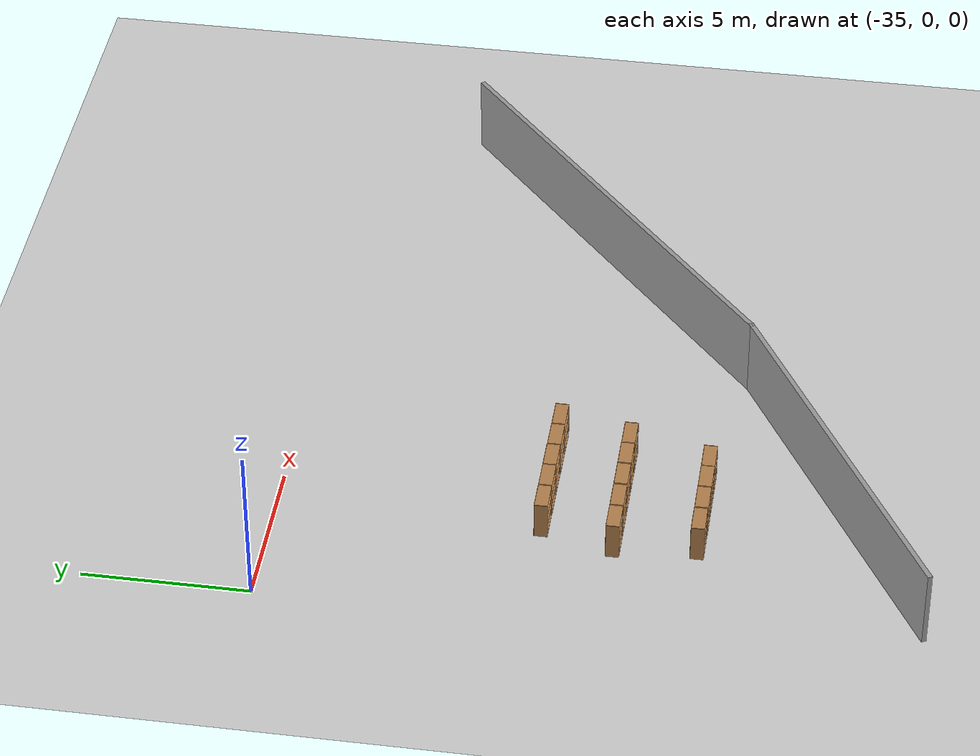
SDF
<sdf version="1.6">
 <world name="default">
  <model name="ground_plane">
   <static>1</static>
   <link name="link">
    <collision name="collision">
     <geometry><plane><normal>0 0 1</normal><size>100 100</size></plane></geometry>
     <surface><friction><ode><mu>100</mu><mu2>50</mu2></ode></friction></surface>
    </collision>
    <visual name="visual">
     <cast_shadows>0</cast_shadows>
     <geometry><plane><normal>0 0 1</normal><size>100 100</size></plane></geometry>
     <material>
      <script><uri>file://media/materials/scripts/gazebo.material</uri><name>Gazebo/Grey</name></script>
     </material>
    </visual>
   </link>
  </model>
  <model name="mall_new_reduce_size">
   <pose>-6.8092 7.5529 0 0 -0 0</pose>
   <link name="Wall_312">
    <collision name="Wall_312_Collision">
     <geometry><box><size>15.0612 0.15 2.5</size></box></geometry>
     <pose>0 0 1.25 0 -0 0</pose>
    </collision>
    <visual name="Wall_312_Visual">
     <pose>0 0 1.25 0 -0 0</pose>
     <geometry><box><size>15.0612 0.15 2.5</size></box></geometry>
     <material>
      <script><uri>file://media/materials/scripts/gazebo.material</uri><name>Gazebo/Grey</name></script>
      <ambient>1 1 1 1</ambient>
     </material>
     <meta><layer>0</layer></meta>
    </visual>
    <pose>-11.548 -15.883 0 0 -0 -2.41791</pose>
   </link>
   <link name="Wall_313">
    <collision name="Wall_313_Collision">
     <geometry><box><size>11.9714 0.15 2.5</size></box></geometry>
     <pose>0 0 1.25 0 -0 0</pose>
    </collision>
    <visual name="Wall_313_Visual">
     <pose>0 0 1.25 0 -0 0</pose>
     <geometry><box><size>11.9714 0.15 2.5</size></box></geometry>
     <material>
      <script><uri>file://media/materials/scripts/gazebo.material</uri><name>Gazebo/Grey</name></script>
      <ambient>1 1 1 1</ambient>
     </material>
     <meta><layer>0</layer></meta>
    </visual>
    <pose>-22.2421 -23.7733 0 0 -0 -2.61833</pose>
   </link>
   <static>1</static>
  </model>
  <model name="bookshelf_2">
   <static>1</static>
   <link name="link">
    <inertial><mass>1</mass></inertial>
    <collision name="back">
     <pose>0 0.005 0.6 0 -0 0</pose>
     <geometry><box><size>0.9 0.01 1.2</size></box></geometry>
    </collision>
    <visual name="visual1">
     <pose>0 0.005 0.6 0 -0 0</pose>
     <geometry><box><size>0.9 0.01 1.2</size></box></geometry>
     <material>
      <script><uri>file://media/materials/scripts/gazebo.material</uri><name>Gazebo/Wood</name></script>
     </material>
    </visual>
    <collision name="left_side">
     <pose>0.45 -0.195 0.6 0 -0 0</pose>
     <geometry><box><size>0.02 0.4 1.2</size></box></geometry>
    </collision>
    <visual name="visual2">
     <pose>0.45 -0.195 0.6 0 -0 0</pose>
     <geometry><box><size>0.02 0.4 1.2</size></box></geometry>
     <material>
      <script><uri>file://media/materials/scripts/gazebo.material</uri><name>Gazebo/Wood</name></script>
     </material>
    </visual>
    <collision name="right_side">
     <pose>-0.45 -0.195 0.6 0 -0 0</pose>
     <geometry><box><size>0.02 0.4 1.2</size></box></geometry>
    </collision>
    <visual name="visual3">
     <pose>-0.45 -0.195 0.6 0 -0 0</pose>
     <geometry><box><size>0.02 0.4 1.2</size></box></geometry>
     <material>
      <script><uri>file://media/materials/scripts/gazebo.material</uri><name>Gazebo/Wood</name></script>
     </material>
    </visual>
    <collision name="bottom">
     <pose>0 -0.195 0.03 0 -0 0</pose>
     <geometry><box><size>0.88 0.4 0.06</size></box></geometry>
    </collision>
    <visual name="visual4">
     <pose>0 -0.195 0.03 0 -0 0</pose>
     <geometry><box><size>0.88 0.4 0.06</size></box></geometry>
     <material>
      <script><uri>file://media/materials/scripts/gazebo.material</uri><name>Gazebo/Wood</name></script>
     </material>
    </visual>
    <collision name="top">
     <pose>0 -0.195 1.19 0 -0 0</pose>
     <geometry><box><size>0.88 0.4 0.02</size></box></geometry>
    </collision>
    <visual name="visual5">
     <pose>0 -0.195 1.19 0 -0 0</pose>
     <geometry><box><size>0.88 0.4 0.02</size></box></geometry>
     <material>
      <script><uri>file://media/materials/scripts/gazebo.material</uri><name>Gazebo/Wood</name></script>
     </material>
    </visual>
    <collision name="low_shelf">
     <pose>0 -0.195 0.43 0 -0 0</pose>
     <geometry><box><size>0.88 0.4 0.02</size></box></geometry>
    </collision>
    <visual name="visual6">
     <pose>0 -0.195 0.43 0 -0 0</pose>
     <geometry><box><size>0.88 0.4 0.02</size></box></geometry>
     <material>
      <script><uri>file://media/materials/scripts/gazebo.material</uri><name>Gazebo/Wood</name></script>
     </material>
    </visual>
    <collision name="high_shelf">
     <pose>0 -0.195 0.8 0 -0 0</pose>
     <geometry><box><size>0.88 0.4 0.02</size></box></geometry>
    </collision>
    <visual name="visual7">
     <pose>0 -0.195 0.8 0 -0 0</pose>
     <geometry><box><size>0.88 0.4 0.02</size></box></geometry>
     <material>
      <script><uri>file://media/materials/scripts/gazebo.material</uri><name>Gazebo/Wood</name></script>
     </material>
    </visual>
   </link>
   <pose>-31.024 -7.70119 0 0 -0 0</pose>
  </model>
  <model name="bookshelf_7">
   <static>1</static>
   <link name="link">
    <inertial><mass>1</mass></inertial>
    <collision name="back">
     <pose>0 0.005 0.6 0 -0 0</pose>
     <geometry><box><size>0.9 0.01 1.2</size></box></geometry>
    </collision>
    <visual name="visual1">
     <pose>0 0.005 0.6 0 -0 0</pose>
     <geometry><box><size>0.9 0.01 1.2</size></box></geometry>
     <material>
      <script><uri>file://media/materials/scripts/gazebo.material</uri><name>Gazebo/Wood</name></script>
     </material>
    </visual>
    <collision name="left_side">
     <pose>0.45 -0.195 0.6 0 -0 0</pose>
     <geometry><box><size>0.02 0.4 1.2</size></box></geometry>
    </collision>
    <visual name="visual2">
     <pose>0.45 -0.195 0.6 0 -0 0</pose>
     <geometry><box><size>0.02 0.4 1.2</size></box></geometry>
     <material>
      <script><uri>file://media/materials/scripts/gazebo.material</uri><name>Gazebo/Wood</name></script>
     </material>
    </visual>
    <collision name="right_side">
     <pose>-0.45 -0.195 0.6 0 -0 0</pose>
     <geometry><box><size>0.02 0.4 1.2</size></box></geometry>
    </collision>
    <visual name="visual3">
     <pose>-0.45 -0.195 0.6 0 -0 0</pose>
     <geometry><box><size>0.02 0.4 1.2</size></box></geometry>
     <material>
      <script><uri>file://media/materials/scripts/gazebo.material</uri><name>Gazebo/Wood</name></script>
     </material>
    </visual>
    <collision name="bottom">
     <pose>0 -0.195 0.03 0 -0 0</pose>
     <geometry><box><size>0.88 0.4 0.06</size></box></geometry>
    </collision>
    <visual name="visual4">
     <pose>0 -0.195 0.03 0 -0 0</pose>
     <geometry><box><size>0.88 0.4 0.06</size></box></geometry>
     <material>
      <script><uri>file://media/materials/scripts/gazebo.material</uri><name>Gazebo/Wood</name></script>
     </material>
    </visual>
    <collision name="top">
     <pose>0 -0.195 1.19 0 -0 0</pose>
     <geometry><box><size>0.88 0.4 0.02</size></box></geometry>
    </collision>
    <visual name="visual5">
     <pose>0 -0.195 1.19 0 -0 0</pose>
     <geometry><box><size>0.88 0.4 0.02</size></box></geometry>
     <material>
      <script><uri>file://media/materials/scripts/gazebo.material</uri><name>Gazebo/Wood</name></script>
     </material>
    </visual>
    <collision name="low_shelf">
     <pose>0 -0.195 0.43 0 -0 0</pose>
     <geometry><box><size>0.88 0.4 0.02</size></box></geometry>
    </collision>
    <visual name="visual6">
     <pose>0 -0.195 0.43 0 -0 0</pose>
     <geometry><box><size>0.88 0.4 0.02</size></box></geometry>
     <material>
      <script><uri>file://media/materials/scripts/gazebo.material</uri><name>Gazebo/Wood</name></script>
     </material>
    </visual>
    <collision name="high_shelf">
     <pose>0 -0.195 0.8 0 -0 0</pose>
     <geometry><box><size>0.88 0.4 0.02</size></box></geometry>
    </collision>
    <visual name="visual7">
     <pose>0 -0.195 0.8 0 -0 0</pose>
     <geometry><box><size>0.88 0.4 0.02</size></box></geometry>
     <material>
      <script><uri>file://media/materials/scripts/gazebo.material</uri><name>Gazebo/Wood</name></script>
     </material>
    </visual>
   </link>
   <pose>-31.5858 -9.8709 0 0 -0 0</pose>
  </model>
  <model name="bookshelf_8">
   <static>1</static>
   <link name="link">
    <inertial><mass>1</mass></inertial>
    <collision name="back">
     <pose>0 0.005 0.6 0 -0 0</pose>
     <geometry><box><size>0.9 0.01 1.2</size></box></geometry>
    </collision>
    <visual name="visual1">
     <pose>0 0.005 0.6 0 -0 0</pose>
     <geometry><box><size>0.9 0.01 1.2</size></box></geometry>
     <material>
      <script><uri>file://media/materials/scripts/gazebo.material</uri><name>Gazebo/Wood</name></script>
     </material>
    </visual>
    <collision name="left_side">
     <pose>0.45 -0.195 0.6 0 -0 0</pose>
     <geometry><box><size>0.02 0.4 1.2</size></box></geometry>
    </collision>
    <visual name="visual2">
     <pose>0.45 -0.195 0.6 0 -0 0</pose>
     <geometry><box><size>0.02 0.4 1.2</size></box></geometry>
     <material>
      <script><uri>file://media/materials/scripts/gazebo.material</uri><name>Gazebo/Wood</name></script>
     </material>
    </visual>
    <collision name="right_side">
     <pose>-0.45 -0.195 0.6 0 -0 0</pose>
     <geometry><box><size>0.02 0.4 1.2</size></box></geometry>
    </collision>
    <visual name="visual3">
     <pose>-0.45 -0.195 0.6 0 -0 0</pose>
     <geometry><box><size>0.02 0.4 1.2</size></box></geometry>
     <material>
      <script><uri>file://media/materials/scripts/gazebo.material</uri><name>Gazebo/Wood</name></script>
     </material>
    </visual>
    <collision name="bottom">
     <pose>0 -0.195 0.03 0 -0 0</pose>
     <geometry><box><size>0.88 0.4 0.06</size></box></geometry>
    </collision>
    <visual name="visual4">
     <pose>0 -0.195 0.03 0 -0 0</pose>
     <geometry><box><size>0.88 0.4 0.06</size></box></geometry>
     <material>
      <script><uri>file://media/materials/scripts/gazebo.material</uri><name>Gazebo/Wood</name></script>
     </material>
    </visual>
    <collision name="top">
     <pose>0 -0.195 1.19 0 -0 0</pose>
     <geometry><box><size>0.88 0.4 0.02</size></box></geometry>
    </collision>
    <visual name="visual5">
     <pose>0 -0.195 1.19 0 -0 0</pose>
     <geometry><box><size>0.88 0.4 0.02</size></box></geometry>
     <material>
      <script><uri>file://media/materials/scripts/gazebo.material</uri><name>Gazebo/Wood</name></script>
     </material>
    </visual>
    <collision name="low_shelf">
     <pose>0 -0.195 0.43 0 -0 0</pose>
     <geometry><box><size>0.88 0.4 0.02</size></box></geometry>
    </collision>
    <visual name="visual6">
     <pose>0 -0.195 0.43 0 -0 0</pose>
     <geometry><box><size>0.88 0.4 0.02</size></box></geometry>
     <material>
      <script><uri>file://media/materials/scripts/gazebo.material</uri><name>Gazebo/Wood</name></script>
     </material>
    </visual>
    <collision name="high_shelf">
     <pose>0 -0.195 0.8 0 -0 0</pose>
     <geometry><box><size>0.88 0.4 0.02</size></box></geometry>
    </collision>
    <visual name="visual7">
     <pose>0 -0.195 0.8 0 -0 0</pose>
     <geometry><box><size>0.88 0.4 0.02</size></box></geometry>
     <material>
      <script><uri>file://media/materials/scripts/gazebo.material</uri><name>Gazebo/Wood</name></script>
     </material>
    </visual>
   </link>
   <pose>-30.6592 -9.87153 0 0 -0 0</pose>
  </model>
  <model name="bookshelf_9">
   <static>1</static>
   <link name="link">
    <inertial><mass>1</mass></inertial>
    <collision name="back">
     <pose>0 0.005 0.6 0 -0 0</pose>
     <geometry><box><size>0.9 0.01 1.2</size></box></geometry>
    </collision>
    <visual name="visual1">
     <pose>0 0.005 0.6 0 -0 0</pose>
     <geometry><box><size>0.9 0.01 1.2</size></box></geometry>
     <material>
      <script><uri>file://media/materials/scripts/gazebo.material</uri><name>Gazebo/Wood</name></script>
     </material>
    </visual>
    <collision name="left_side">
     <pose>0.45 -0.195 0.6 0 -0 0</pose>
     <geometry><box><size>0.02 0.4 1.2</size></box></geometry>
    </collision>
    <visual name="visual2">
     <pose>0.45 -0.195 0.6 0 -0 0</pose>
     <geometry><box><size>0.02 0.4 1.2</size></box></geometry>
     <material>
      <script><uri>file://media/materials/scripts/gazebo.material</uri><name>Gazebo/Wood</name></script>
     </material>
    </visual>
    <collision name="right_side">
     <pose>-0.45 -0.195 0.6 0 -0 0</pose>
     <geometry><box><size>0.02 0.4 1.2</size></box></geometry>
    </collision>
    <visual name="visual3">
     <pose>-0.45 -0.195 0.6 0 -0 0</pose>
     <geometry><box><size>0.02 0.4 1.2</size></box></geometry>
     <material>
      <script><uri>file://media/materials/scripts/gazebo.material</uri><name>Gazebo/Wood</name></script>
     </material>
    </visual>
    <collision name="bottom">
     <pose>0 -0.195 0.03 0 -0 0</pose>
     <geometry><box><size>0.88 0.4 0.06</size></box></geometry>
    </collision>
    <visual name="visual4">
     <pose>0 -0.195 0.03 0 -0 0</pose>
     <geometry><box><size>0.88 0.4 0.06</size></box></geometry>
     <material>
      <script><uri>file://media/materials/scripts/gazebo.material</uri><name>Gazebo/Wood</name></script>
     </material>
    </visual>
    <collision name="top">
     <pose>0 -0.195 1.19 0 -0 0</pose>
     <geometry><box><size>0.88 0.4 0.02</size></box></geometry>
    </collision>
    <visual name="visual5">
     <pose>0 -0.195 1.19 0 -0 0</pose>
     <geometry><box><size>0.88 0.4 0.02</size></box></geometry>
     <material>
      <script><uri>file://media/materials/scripts/gazebo.material</uri><name>Gazebo/Wood</name></script>
     </material>
    </visual>
    <collision name="low_shelf">
     <pose>0 -0.195 0.43 0 -0 0</pose>
     <geometry><box><size>0.88 0.4 0.02</size></box></geometry>
    </collision>
    <visual name="visual6">
     <pose>0 -0.195 0.43 0 -0 0</pose>
     <geometry><box><size>0.88 0.4 0.02</size></box></geometry>
     <material>
      <script><uri>file://media/materials/scripts/gazebo.material</uri><name>Gazebo/Wood</name></script>
     </material>
    </visual>
    <collision name="high_shelf">
     <pose>0 -0.195 0.8 0 -0 0</pose>
     <geometry><box><size>0.88 0.4 0.02</size></box></geometry>
    </collision>
    <visual name="visual7">
     <pose>0 -0.195 0.8 0 -0 0</pose>
     <geometry><box><size>0.88 0.4 0.02</size></box></geometry>
     <material>
      <script><uri>file://media/materials/scripts/gazebo.material</uri><name>Gazebo/Wood</name></script>
     </material>
    </visual>
   </link>
   <pose>-29.7265 -9.8713 0 0 -0 0</pose>
  </model>
  <model name="bookshelf_10">
   <static>1</static>
   <link name="link">
    <inertial><mass>1</mass></inertial>
    <collision name="back">
     <pose>0 0.005 0.6 0 -0 0</pose>
     <geometry><box><size>0.9 0.01 1.2</size></box></geometry>
    </collision>
    <visual name="visual1">
     <pose>0 0.005 0.6 0 -0 0</pose>
     <geometry><box><size>0.9 0.01 1.2</size></box></geometry>
     <material>
      <script><uri>file://media/materials/scripts/gazebo.material</uri><name>Gazebo/Wood</name></script>
     </material>
    </visual>
    <collision name="left_side">
     <pose>0.45 -0.195 0.6 0 -0 0</pose>
     <geometry><box><size>0.02 0.4 1.2</size></box></geometry>
    </collision>
    <visual name="visual2">
     <pose>0.45 -0.195 0.6 0 -0 0</pose>
     <geometry><box><size>0.02 0.4 1.2</size></box></geometry>
     <material>
      <script><uri>file://media/materials/scripts/gazebo.material</uri><name>Gazebo/Wood</name></script>
     </material>
    </visual>
    <collision name="right_side">
     <pose>-0.45 -0.195 0.6 0 -0 0</pose>
     <geometry><box><size>0.02 0.4 1.2</size></box></geometry>
    </collision>
    <visual name="visual3">
     <pose>-0.45 -0.195 0.6 0 -0 0</pose>
     <geometry><box><size>0.02 0.4 1.2</size></box></geometry>
     <material>
      <script><uri>file://media/materials/scripts/gazebo.material</uri><name>Gazebo/Wood</name></script>
     </material>
    </visual>
    <collision name="bottom">
     <pose>0 -0.195 0.03 0 -0 0</pose>
     <geometry><box><size>0.88 0.4 0.06</size></box></geometry>
    </collision>
    <visual name="visual4">
     <pose>0 -0.195 0.03 0 -0 0</pose>
     <geometry><box><size>0.88 0.4 0.06</size></box></geometry>
     <material>
      <script><uri>file://media/materials/scripts/gazebo.material</uri><name>Gazebo/Wood</name></script>
     </material>
    </visual>
    <collision name="top">
     <pose>0 -0.195 1.19 0 -0 0</pose>
     <geometry><box><size>0.88 0.4 0.02</size></box></geometry>
    </collision>
    <visual name="visual5">
     <pose>0 -0.195 1.19 0 -0 0</pose>
     <geometry><box><size>0.88 0.4 0.02</size></box></geometry>
     <material>
      <script><uri>file://media/materials/scripts/gazebo.material</uri><name>Gazebo/Wood</name></script>
     </material>
    </visual>
    <collision name="low_shelf">
     <pose>0 -0.195 0.43 0 -0 0</pose>
     <geometry><box><size>0.88 0.4 0.02</size></box></geometry>
    </collision>
    <visual name="visual6">
     <pose>0 -0.195 0.43 0 -0 0</pose>
     <geometry><box><size>0.88 0.4 0.02</size></box></geometry>
     <material>
      <script><uri>file://media/materials/scripts/gazebo.material</uri><name>Gazebo/Wood</name></script>
     </material>
    </visual>
    <collision name="high_shelf">
     <pose>0 -0.195 0.8 0 -0 0</pose>
     <geometry><box><size>0.88 0.4 0.02</size></box></geometry>
    </collision>
    <visual name="visual7">
     <pose>0 -0.195 0.8 0 -0 0</pose>
     <geometry><box><size>0.88 0.4 0.02</size></box></geometry>
     <material>
      <script><uri>file://media/materials/scripts/gazebo.material</uri><name>Gazebo/Wood</name></script>
     </material>
    </visual>
   </link>
   <pose>-30.1019 -7.70663 0 0 -0 0</pose>
  </model>
  <model name="bookshelf_33">
   <static>1</static>
   <link name="link">
    <inertial><mass>1</mass></inertial>
    <collision name="back">
     <pose>0 0.005 0.6 0 -0 0</pose>
     <geometry><box><size>0.9 0.01 1.2</size></box></geometry>
    </collision>
    <visual name="visual1">
     <pose>0 0.005 0.6 0 -0 0</pose>
     <geometry><box><size>0.9 0.01 1.2</size></box></geometry>
     <material>
      <script><uri>file://media/materials/scripts/gazebo.material</uri><name>Gazebo/Wood</name></script>
     </material>
    </visual>
    <collision name="left_side">
     <pose>0.45 -0.195 0.6 0 -0 0</pose>
     <geometry><box><size>0.02 0.4 1.2</size></box></geometry>
    </collision>
    <visual name="visual2">
     <pose>0.45 -0.195 0.6 0 -0 0</pose>
     <geometry><box><size>0.02 0.4 1.2</size></box></geometry>
     <material>
      <script><uri>file://media/materials/scripts/gazebo.material</uri><name>Gazebo/Wood</name></script>
     </material>
    </visual>
    <collision name="right_side">
     <pose>-0.45 -0.195 0.6 0 -0 0</pose>
     <geometry><box><size>0.02 0.4 1.2</size></box></geometry>
    </collision>
    <visual name="visual3">
     <pose>-0.45 -0.195 0.6 0 -0 0</pose>
     <geometry><box><size>0.02 0.4 1.2</size></box></geometry>
     <material>
      <script><uri>file://media/materials/scripts/gazebo.material</uri><name>Gazebo/Wood</name></script>
     </material>
    </visual>
    <collision name="bottom">
     <pose>0 -0.195 0.03 0 -0 0</pose>
     <geometry><box><size>0.88 0.4 0.06</size></box></geometry>
    </collision>
    <visual name="visual4">
     <pose>0 -0.195 0.03 0 -0 0</pose>
     <geometry><box><size>0.88 0.4 0.06</size></box></geometry>
     <material>
      <script><uri>file://media/materials/scripts/gazebo.material</uri><name>Gazebo/Wood</name></script>
     </material>
    </visual>
    <collision name="top">
     <pose>0 -0.195 1.19 0 -0 0</pose>
     <geometry><box><size>0.88 0.4 0.02</size></box></geometry>
    </collision>
    <visual name="visual5">
     <pose>0 -0.195 1.19 0 -0 0</pose>
     <geometry><box><size>0.88 0.4 0.02</size></box></geometry>
     <material>
      <script><uri>file://media/materials/scripts/gazebo.material</uri><name>Gazebo/Wood</name></script>
     </material>
    </visual>
    <collision name="low_shelf">
     <pose>0 -0.195 0.43 0 -0 0</pose>
     <geometry><box><size>0.88 0.4 0.02</size></box></geometry>
    </collision>
    <visual name="visual6">
     <pose>0 -0.195 0.43 0 -0 0</pose>
     <geometry><box><size>0.88 0.4 0.02</size></box></geometry>
     <material>
      <script><uri>file://media/materials/scripts/gazebo.material</uri><name>Gazebo/Wood</name></script>
     </material>
    </visual>
    <collision name="high_shelf">
     <pose>0 -0.195 0.8 0 -0 0</pose>
     <geometry><box><size>0.88 0.4 0.02</size></box></geometry>
    </collision>
    <visual name="visual7">
     <pose>0 -0.195 0.8 0 -0 0</pose>
     <geometry><box><size>0.88 0.4 0.02</size></box></geometry>
     <material>
      <script><uri>file://media/materials/scripts/gazebo.material</uri><name>Gazebo/Wood</name></script>
     </material>
    </visual>
   </link>
   <pose>-31.3341 -12.3093 0 0 -0 0</pose>
  </model>
  <model name="bookshelf_34">
   <static>1</static>
   <link name="link">
    <inertial><mass>1</mass></inertial>
    <collision name="back">
     <pose>0 0.005 0.6 0 -0 0</pose>
     <geometry><box><size>0.9 0.01 1.2</size></box></geometry>
    </collision>
    <visual name="visual1">
     <pose>0 0.005 0.6 0 -0 0</pose>
     <geometry><box><size>0.9 0.01 1.2</size></box></geometry>
     <material>
      <script><uri>file://media/materials/scripts/gazebo.material</uri><name>Gazebo/Wood</name></script>
     </material>
    </visual>
    <collision name="left_side">
     <pose>0.45 -0.195 0.6 0 -0 0</pose>
     <geometry><box><size>0.02 0.4 1.2</size></box></geometry>
    </collision>
    <visual name="visual2">
     <pose>0.45 -0.195 0.6 0 -0 0</pose>
     <geometry><box><size>0.02 0.4 1.2</size></box></geometry>
     <material>
      <script><uri>file://media/materials/scripts/gazebo.material</uri><name>Gazebo/Wood</name></script>
     </material>
    </visual>
    <collision name="right_side">
     <pose>-0.45 -0.195 0.6 0 -0 0</pose>
     <geometry><box><size>0.02 0.4 1.2</size></box></geometry>
    </collision>
    <visual name="visual3">
     <pose>-0.45 -0.195 0.6 0 -0 0</pose>
     <geometry><box><size>0.02 0.4 1.2</size></box></geometry>
     <material>
      <script><uri>file://media/materials/scripts/gazebo.material</uri><name>Gazebo/Wood</name></script>
     </material>
    </visual>
    <collision name="bottom">
     <pose>0 -0.195 0.03 0 -0 0</pose>
     <geometry><box><size>0.88 0.4 0.06</size></box></geometry>
    </collision>
    <visual name="visual4">
     <pose>0 -0.195 0.03 0 -0 0</pose>
     <geometry><box><size>0.88 0.4 0.06</size></box></geometry>
     <material>
      <script><uri>file://media/materials/scripts/gazebo.material</uri><name>Gazebo/Wood</name></script>
     </material>
    </visual>
    <collision name="top">
     <pose>0 -0.195 1.19 0 -0 0</pose>
     <geometry><box><size>0.88 0.4 0.02</size></box></geometry>
    </collision>
    <visual name="visual5">
     <pose>0 -0.195 1.19 0 -0 0</pose>
     <geometry><box><size>0.88 0.4 0.02</size></box></geometry>
     <material>
      <script><uri>file://media/materials/scripts/gazebo.material</uri><name>Gazebo/Wood</name></script>
     </material>
    </visual>
    <collision name="low_shelf">
     <pose>0 -0.195 0.43 0 -0 0</pose>
     <geometry><box><size>0.88 0.4 0.02</size></box></geometry>
    </collision>
    <visual name="visual6">
     <pose>0 -0.195 0.43 0 -0 0</pose>
     <geometry><box><size>0.88 0.4 0.02</size></box></geometry>
     <material>
      <script><uri>file://media/materials/scripts/gazebo.material</uri><name>Gazebo/Wood</name></script>
     </material>
    </visual>
    <collision name="high_shelf">
     <pose>0 -0.195 0.8 0 -0 0</pose>
     <geometry><box><size>0.88 0.4 0.02</size></box></geometry>
    </collision>
    <visual name="visual7">
     <pose>0 -0.195 0.8 0 -0 0</pose>
     <geometry><box><size>0.88 0.4 0.02</size></box></geometry>
     <material>
      <script><uri>file://media/materials/scripts/gazebo.material</uri><name>Gazebo/Wood</name></script>
     </material>
    </visual>
   </link>
   <pose>-30.4075 -12.3142 0 0 -0 0</pose>
  </model>
  <model name="bookshelf_35">
   <static>1</static>
   <link name="link">
    <inertial><mass>1</mass></inertial>
    <collision name="back">
     <pose>0 0.005 0.6 0 -0 0</pose>
     <geometry><box><size>0.9 0.01 1.2</size></box></geometry>
    </collision>
    <visual name="visual1">
     <pose>0 0.005 0.6 0 -0 0</pose>
     <geometry><box><size>0.9 0.01 1.2</size></box></geometry>
     <material>
      <script><uri>file://media/materials/scripts/gazebo.material</uri><name>Gazebo/Wood</name></script>
     </material>
    </visual>
    <collision name="left_side">
     <pose>0.45 -0.195 0.6 0 -0 0</pose>
     <geometry><box><size>0.02 0.4 1.2</size></box></geometry>
    </collision>
    <visual name="visual2">
     <pose>0.45 -0.195 0.6 0 -0 0</pose>
     <geometry><box><size>0.02 0.4 1.2</size></box></geometry>
     <material>
      <script><uri>file://media/materials/scripts/gazebo.material</uri><name>Gazebo/Wood</name></script>
     </material>
    </visual>
    <collision name="right_side">
     <pose>-0.45 -0.195 0.6 0 -0 0</pose>
     <geometry><box><size>0.02 0.4 1.2</size></box></geometry>
    </collision>
    <visual name="visual3">
     <pose>-0.45 -0.195 0.6 0 -0 0</pose>
     <geometry><box><size>0.02 0.4 1.2</size></box></geometry>
     <material>
      <script><uri>file://media/materials/scripts/gazebo.material</uri><name>Gazebo/Wood</name></script>
     </material>
    </visual>
    <collision name="bottom">
     <pose>0 -0.195 0.03 0 -0 0</pose>
     <geometry><box><size>0.88 0.4 0.06</size></box></geometry>
    </collision>
    <visual name="visual4">
     <pose>0 -0.195 0.03 0 -0 0</pose>
     <geometry><box><size>0.88 0.4 0.06</size></box></geometry>
     <material>
      <script><uri>file://media/materials/scripts/gazebo.material</uri><name>Gazebo/Wood</name></script>
     </material>
    </visual>
    <collision name="top">
     <pose>0 -0.195 1.19 0 -0 0</pose>
     <geometry><box><size>0.88 0.4 0.02</size></box></geometry>
    </collision>
    <visual name="visual5">
     <pose>0 -0.195 1.19 0 -0 0</pose>
     <geometry><box><size>0.88 0.4 0.02</size></box></geometry>
     <material>
      <script><uri>file://media/materials/scripts/gazebo.material</uri><name>Gazebo/Wood</name></script>
     </material>
    </visual>
    <collision name="low_shelf">
     <pose>0 -0.195 0.43 0 -0 0</pose>
     <geometry><box><size>0.88 0.4 0.02</size></box></geometry>
    </collision>
    <visual name="visual6">
     <pose>0 -0.195 0.43 0 -0 0</pose>
     <geometry><box><size>0.88 0.4 0.02</size></box></geometry>
     <material>
      <script><uri>file://media/materials/scripts/gazebo.material</uri><name>Gazebo/Wood</name></script>
     </material>
    </visual>
    <collision name="high_shelf">
     <pose>0 -0.195 0.8 0 -0 0</pose>
     <geometry><box><size>0.88 0.4 0.02</size></box></geometry>
    </collision>
    <visual name="visual7">
     <pose>0 -0.195 0.8 0 -0 0</pose>
     <geometry><box><size>0.88 0.4 0.02</size></box></geometry>
     <material>
      <script><uri>file://media/materials/scripts/gazebo.material</uri><name>Gazebo/Wood</name></script>
     </material>
    </visual>
   </link>
   <pose>-29.4848 -12.3163 0 0 -0 0</pose>
  </model>
  <model name="bookshelf_36">
   <static>1</static>
   <link name="link">
    <inertial><mass>1</mass></inertial>
    <collision name="back">
     <pose>0 0.005 0.6 0 -0 0</pose>
     <geometry><box><size>0.9 0.01 1.2</size></box></geometry>
    </collision>
    <visual name="visual1">
     <pose>0 0.005 0.6 0 -0 0</pose>
     <geometry><box><size>0.9 0.01 1.2</size></box></geometry>
     <material>
      <script><uri>file://media/materials/scripts/gazebo.material</uri><name>Gazebo/Wood</name></script>
     </material>
    </visual>
    <collision name="left_side">
     <pose>0.45 -0.195 0.6 0 -0 0</pose>
     <geometry><box><size>0.02 0.4 1.2</size></box></geometry>
    </collision>
    <visual name="visual2">
     <pose>0.45 -0.195 0.6 0 -0 0</pose>
     <geometry><box><size>0.02 0.4 1.2</size></box></geometry>
     <material>
      <script><uri>file://media/materials/scripts/gazebo.material</uri><name>Gazebo/Wood</name></script>
     </material>
    </visual>
    <collision name="right_side">
     <pose>-0.45 -0.195 0.6 0 -0 0</pose>
     <geometry><box><size>0.02 0.4 1.2</size></box></geometry>
    </collision>
    <visual name="visual3">
     <pose>-0.45 -0.195 0.6 0 -0 0</pose>
     <geometry><box><size>0.02 0.4 1.2</size></box></geometry>
     <material>
      <script><uri>file://media/materials/scripts/gazebo.material</uri><name>Gazebo/Wood</name></script>
     </material>
    </visual>
    <collision name="bottom">
     <pose>0 -0.195 0.03 0 -0 0</pose>
     <geometry><box><size>0.88 0.4 0.06</size></box></geometry>
    </collision>
    <visual name="visual4">
     <pose>0 -0.195 0.03 0 -0 0</pose>
     <geometry><box><size>0.88 0.4 0.06</size></box></geometry>
     <material>
      <script><uri>file://media/materials/scripts/gazebo.material</uri><name>Gazebo/Wood</name></script>
     </material>
    </visual>
    <collision name="top">
     <pose>0 -0.195 1.19 0 -0 0</pose>
     <geometry><box><size>0.88 0.4 0.02</size></box></geometry>
    </collision>
    <visual name="visual5">
     <pose>0 -0.195 1.19 0 -0 0</pose>
     <geometry><box><size>0.88 0.4 0.02</size></box></geometry>
     <material>
      <script><uri>file://media/materials/scripts/gazebo.material</uri><name>Gazebo/Wood</name></script>
     </material>
    </visual>
    <collision name="low_shelf">
     <pose>0 -0.195 0.43 0 -0 0</pose>
     <geometry><box><size>0.88 0.4 0.02</size></box></geometry>
    </collision>
    <visual name="visual6">
     <pose>0 -0.195 0.43 0 -0 0</pose>
     <geometry><box><size>0.88 0.4 0.02</size></box></geometry>
     <material>
      <script><uri>file://media/materials/scripts/gazebo.material</uri><name>Gazebo/Wood</name></script>
     </material>
    </visual>
    <collision name="high_shelf">
     <pose>0 -0.195 0.8 0 -0 0</pose>
     <geometry><box><size>0.88 0.4 0.02</size></box></geometry>
    </collision>
    <visual name="visual7">
     <pose>0 -0.195 0.8 0 -0 0</pose>
     <geometry><box><size>0.88 0.4 0.02</size></box></geometry>
     <material>
      <script><uri>file://media/materials/scripts/gazebo.material</uri><name>Gazebo/Wood</name></script>
     </material>
    </visual>
   </link>
   <pose>-28.5845 -12.3172 0 0 -0 0</pose>
  </model>
  <model name="bookshelf_37">
   <static>1</static>
   <link name="link">
    <inertial><mass>1</mass></inertial>
    <collision name="back">
     <pose>0 0.005 0.6 0 -0 0</pose>
     <geometry><box><size>0.9 0.01 1.2</size></box></geometry>
    </collision>
    <visual name="visual1">
     <pose>0 0.005 0.6 0 -0 0</pose>
     <geometry><box><size>0.9 0.01 1.2</size></box></geometry>
     <material>
      <script><uri>file://media/materials/scripts/gazebo.material</uri><name>Gazebo/Wood</name></script>
     </material>
    </visual>
    <collision name="left_side">
     <pose>0.45 -0.195 0.6 0 -0 0</pose>
     <geometry><box><size>0.02 0.4 1.2</size></box></geometry>
    </collision>
    <visual name="visual2">
     <pose>0.45 -0.195 0.6 0 -0 0</pose>
     <geometry><box><size>0.02 0.4 1.2</size></box></geometry>
     <material>
      <script><uri>file://media/materials/scripts/gazebo.material</uri><name>Gazebo/Wood</name></script>
     </material>
    </visual>
    <collision name="right_side">
     <pose>-0.45 -0.195 0.6 0 -0 0</pose>
     <geometry><box><size>0.02 0.4 1.2</size></box></geometry>
    </collision>
    <visual name="visual3">
     <pose>-0.45 -0.195 0.6 0 -0 0</pose>
     <geometry><box><size>0.02 0.4 1.2</size></box></geometry>
     <material>
      <script><uri>file://media/materials/scripts/gazebo.material</uri><name>Gazebo/Wood</name></script>
     </material>
    </visual>
    <collision name="bottom">
     <pose>0 -0.195 0.03 0 -0 0</pose>
     <geometry><box><size>0.88 0.4 0.06</size></box></geometry>
    </collision>
    <visual name="visual4">
     <pose>0 -0.195 0.03 0 -0 0</pose>
     <geometry><box><size>0.88 0.4 0.06</size></box></geometry>
     <material>
      <script><uri>file://media/materials/scripts/gazebo.material</uri><name>Gazebo/Wood</name></script>
     </material>
    </visual>
    <collision name="top">
     <pose>0 -0.195 1.19 0 -0 0</pose>
     <geometry><box><size>0.88 0.4 0.02</size></box></geometry>
    </collision>
    <visual name="visual5">
     <pose>0 -0.195 1.19 0 -0 0</pose>
     <geometry><box><size>0.88 0.4 0.02</size></box></geometry>
     <material>
      <script><uri>file://media/materials/scripts/gazebo.material</uri><name>Gazebo/Wood</name></script>
     </material>
    </visual>
    <collision name="low_shelf">
     <pose>0 -0.195 0.43 0 -0 0</pose>
     <geometry><box><size>0.88 0.4 0.02</size></box></geometry>
    </collision>
    <visual name="visual6">
     <pose>0 -0.195 0.43 0 -0 0</pose>
     <geometry><box><size>0.88 0.4 0.02</size></box></geometry>
     <material>
      <script><uri>file://media/materials/scripts/gazebo.material</uri><name>Gazebo/Wood</name></script>
     </material>
    </visual>
    <collision name="high_shelf">
     <pose>0 -0.195 0.8 0 -0 0</pose>
     <geometry><box><size>0.88 0.4 0.02</size></box></geometry>
    </collision>
    <visual name="visual7">
     <pose>0 -0.195 0.8 0 -0 0</pose>
     <geometry><box><size>0.88 0.4 0.02</size></box></geometry>
     <material>
      <script><uri>file://media/materials/scripts/gazebo.material</uri><name>Gazebo/Wood</name></script>
     </material>
    </visual>
   </link>
   <pose>-28.8008 -9.87318 0 0 -0 0</pose>
  </model>
  <model name="bookshelf_38">
   <static>1</static>
   <link name="link">
    <inertial><mass>1</mass></inertial>
    <collision name="back">
     <pose>0 0.005 0.6 0 -0 0</pose>
     <geometry><box><size>0.9 0.01 1.2</size></box></geometry>
    </collision>
    <visual name="visual1">
     <pose>0 0.005 0.6 0 -0 0</pose>
     <geometry><box><size>0.9 0.01 1.2</size></box></geometry>
     <material>
      <script><uri>file://media/materials/scripts/gazebo.material</uri><name>Gazebo/Wood</name></script>
     </material>
    </visual>
    <collision name="left_side">
     <pose>0.45 -0.195 0.6 0 -0 0</pose>
     <geometry><box><size>0.02 0.4 1.2</size></box></geometry>
    </collision>
    <visual name="visual2">
     <pose>0.45 -0.195 0.6 0 -0 0</pose>
     <geometry><box><size>0.02 0.4 1.2</size></box></geometry>
     <material>
      <script><uri>file://media/materials/scripts/gazebo.material</uri><name>Gazebo/Wood</name></script>
     </material>
    </visual>
    <collision name="right_side">
     <pose>-0.45 -0.195 0.6 0 -0 0</pose>
     <geometry><box><size>0.02 0.4 1.2</size></box></geometry>
    </collision>
    <visual name="visual3">
     <pose>-0.45 -0.195 0.6 0 -0 0</pose>
     <geometry><box><size>0.02 0.4 1.2</size></box></geometry>
     <material>
      <script><uri>file://media/materials/scripts/gazebo.material</uri><name>Gazebo/Wood</name></script>
     </material>
    </visual>
    <collision name="bottom">
     <pose>0 -0.195 0.03 0 -0 0</pose>
     <geometry><box><size>0.88 0.4 0.06</size></box></geometry>
    </collision>
    <visual name="visual4">
     <pose>0 -0.195 0.03 0 -0 0</pose>
     <geometry><box><size>0.88 0.4 0.06</size></box></geometry>
     <material>
      <script><uri>file://media/materials/scripts/gazebo.material</uri><name>Gazebo/Wood</name></script>
     </material>
    </visual>
    <collision name="top">
     <pose>0 -0.195 1.19 0 -0 0</pose>
     <geometry><box><size>0.88 0.4 0.02</size></box></geometry>
    </collision>
    <visual name="visual5">
     <pose>0 -0.195 1.19 0 -0 0</pose>
     <geometry><box><size>0.88 0.4 0.02</size></box></geometry>
     <material>
      <script><uri>file://media/materials/scripts/gazebo.material</uri><name>Gazebo/Wood</name></script>
     </material>
    </visual>
    <collision name="low_shelf">
     <pose>0 -0.195 0.43 0 -0 0</pose>
     <geometry><box><size>0.88 0.4 0.02</size></box></geometry>
    </collision>
    <visual name="visual6">
     <pose>0 -0.195 0.43 0 -0 0</pose>
     <geometry><box><size>0.88 0.4 0.02</size></box></geometry>
     <material>
      <script><uri>file://media/materials/scripts/gazebo.material</uri><name>Gazebo/Wood</name></script>
     </material>
    </visual>
    <collision name="high_shelf">
     <pose>0 -0.195 0.8 0 -0 0</pose>
     <geometry><box><size>0.88 0.4 0.02</size></box></geometry>
    </collision>
    <visual name="visual7">
     <pose>0 -0.195 0.8 0 -0 0</pose>
     <geometry><box><size>0.88 0.4 0.02</size></box></geometry>
     <material>
      <script><uri>file://media/materials/scripts/gazebo.material</uri><name>Gazebo/Wood</name></script>
     </material>
    </visual>
   </link>
   <pose>-29.1898 -7.70531 0 0 -0 0</pose>
  </model>
  <model name="bookshelf_39">
   <static>1</static>
   <link name="link">
    <inertial><mass>1</mass></inertial>
    <collision name="back">
     <pose>0 0.005 0.6 0 -0 0</pose>
     <geometry><box><size>0.9 0.01 1.2</size></box></geometry>
    </collision>
    <visual name="visual1">
     <pose>0 0.005 0.6 0 -0 0</pose>
     <geometry><box><size>0.9 0.01 1.2</size></box></geometry>
     <material>
      <script><uri>file://media/materials/scripts/gazebo.material</uri><name>Gazebo/Wood</name></script>
     </material>
    </visual>
    <collision name="left_side">
     <pose>0.45 -0.195 0.6 0 -0 0</pose>
     <geometry><box><size>0.02 0.4 1.2</size></box></geometry>
    </collision>
    <visual name="visual2">
     <pose>0.45 -0.195 0.6 0 -0 0</pose>
     <geometry><box><size>0.02 0.4 1.2</size></box></geometry>
     <material>
      <script><uri>file://media/materials/scripts/gazebo.material</uri><name>Gazebo/Wood</name></script>
     </material>
    </visual>
    <collision name="right_side">
     <pose>-0.45 -0.195 0.6 0 -0 0</pose>
     <geometry><box><size>0.02 0.4 1.2</size></box></geometry>
    </collision>
    <visual name="visual3">
     <pose>-0.45 -0.195 0.6 0 -0 0</pose>
     <geometry><box><size>0.02 0.4 1.2</size></box></geometry>
     <material>
      <script><uri>file://media/materials/scripts/gazebo.material</uri><name>Gazebo/Wood</name></script>
     </material>
    </visual>
    <collision name="bottom">
     <pose>0 -0.195 0.03 0 -0 0</pose>
     <geometry><box><size>0.88 0.4 0.06</size></box></geometry>
    </collision>
    <visual name="visual4">
     <pose>0 -0.195 0.03 0 -0 0</pose>
     <geometry><box><size>0.88 0.4 0.06</size></box></geometry>
     <material>
      <script><uri>file://media/materials/scripts/gazebo.material</uri><name>Gazebo/Wood</name></script>
     </material>
    </visual>
    <collision name="top">
     <pose>0 -0.195 1.19 0 -0 0</pose>
     <geometry><box><size>0.88 0.4 0.02</size></box></geometry>
    </collision>
    <visual name="visual5">
     <pose>0 -0.195 1.19 0 -0 0</pose>
     <geometry><box><size>0.88 0.4 0.02</size></box></geometry>
     <material>
      <script><uri>file://media/materials/scripts/gazebo.material</uri><name>Gazebo/Wood</name></script>
     </material>
    </visual>
    <collision name="low_shelf">
     <pose>0 -0.195 0.43 0 -0 0</pose>
     <geometry><box><size>0.88 0.4 0.02</size></box></geometry>
    </collision>
    <visual name="visual6">
     <pose>0 -0.195 0.43 0 -0 0</pose>
     <geometry><box><size>0.88 0.4 0.02</size></box></geometry>
     <material>
      <script><uri>file://media/materials/scripts/gazebo.material</uri><name>Gazebo/Wood</name></script>
     </material>
    </visual>
    <collision name="high_shelf">
     <pose>0 -0.195 0.8 0 -0 0</pose>
     <geometry><box><size>0.88 0.4 0.02</size></box></geometry>
    </collision>
    <visual name="visual7">
     <pose>0 -0.195 0.8 0 -0 0</pose>
     <geometry><box><size>0.88 0.4 0.02</size></box></geometry>
     <material>
      <script><uri>file://media/materials/scripts/gazebo.material</uri><name>Gazebo/Wood</name></script>
     </material>
    </visual>
   </link>
   <pose>-28.2712 -7.71531 0 0 -0 0</pose>
  </model>
  <model name="bookshelf_40">
   <static>1</static>
   <link name="link">
    <inertial><mass>1</mass></inertial>
    <collision name="back">
     <pose>0 0.005 0.6 0 -0 0</pose>
     <geometry><box><size>0.9 0.01 1.2</size></box></geometry>
    </collision>
    <visual name="visual1">
     <pose>0 0.005 0.6 0 -0 0</pose>
     <geometry><box><size>0.9 0.01 1.2</size></box></geometry>
     <material>
      <script><uri>file://media/materials/scripts/gazebo.material</uri><name>Gazebo/Wood</name></script>
     </material>
    </visual>
    <collision name="left_side">
     <pose>0.45 -0.195 0.6 0 -0 0</pose>
     <geometry><box><size>0.02 0.4 1.2</size></box></geometry>
    </collision>
    <visual name="visual2">
     <pose>0.45 -0.195 0.6 0 -0 0</pose>
     <geometry><box><size>0.02 0.4 1.2</size></box></geometry>
     <material>
      <script><uri>file://media/materials/scripts/gazebo.material</uri><name>Gazebo/Wood</name></script>
     </material>
    </visual>
    <collision name="right_side">
     <pose>-0.45 -0.195 0.6 0 -0 0</pose>
     <geometry><box><size>0.02 0.4 1.2</size></box></geometry>
    </collision>
    <visual name="visual3">
     <pose>-0.45 -0.195 0.6 0 -0 0</pose>
     <geometry><box><size>0.02 0.4 1.2</size></box></geometry>
     <material>
      <script><uri>file://media/materials/scripts/gazebo.material</uri><name>Gazebo/Wood</name></script>
     </material>
    </visual>
    <collision name="bottom">
     <pose>0 -0.195 0.03 0 -0 0</pose>
     <geometry><box><size>0.88 0.4 0.06</size></box></geometry>
    </collision>
    <visual name="visual4">
     <pose>0 -0.195 0.03 0 -0 0</pose>
     <geometry><box><size>0.88 0.4 0.06</size></box></geometry>
     <material>
      <script><uri>file://media/materials/scripts/gazebo.material</uri><name>Gazebo/Wood</name></script>
     </material>
    </visual>
    <collision name="top">
     <pose>0 -0.195 1.19 0 -0 0</pose>
     <geometry><box><size>0.88 0.4 0.02</size></box></geometry>
    </collision>
    <visual name="visual5">
     <pose>0 -0.195 1.19 0 -0 0</pose>
     <geometry><box><size>0.88 0.4 0.02</size></box></geometry>
     <material>
      <script><uri>file://media/materials/scripts/gazebo.material</uri><name>Gazebo/Wood</name></script>
     </material>
    </visual>
    <collision name="low_shelf">
     <pose>0 -0.195 0.43 0 -0 0</pose>
     <geometry><box><size>0.88 0.4 0.02</size></box></geometry>
    </collision>
    <visual name="visual6">
     <pose>0 -0.195 0.43 0 -0 0</pose>
     <geometry><box><size>0.88 0.4 0.02</size></box></geometry>
     <material>
      <script><uri>file://media/materials/scripts/gazebo.material</uri><name>Gazebo/Wood</name></script>
     </material>
    </visual>
    <collision name="high_shelf">
     <pose>0 -0.195 0.8 0 -0 0</pose>
     <geometry><box><size>0.88 0.4 0.02</size></box></geometry>
    </collision>
    <visual name="visual7">
     <pose>0 -0.195 0.8 0 -0 0</pose>
     <geometry><box><size>0.88 0.4 0.02</size></box></geometry>
     <material>
      <script><uri>file://media/materials/scripts/gazebo.material</uri><name>Gazebo/Wood</name></script>
     </material>
    </visual>
   </link>
   <pose>-27.3519 -7.71801 0 0 -0 0</pose>
  </model>
  <model name="bookshelf_41">
   <static>1</static>
   <link name="link">
    <inertial><mass>1</mass></inertial>
    <collision name="back">
     <pose>0 0.005 0.6 0 -0 0</pose>
     <geometry><box><size>0.9 0.01 1.2</size></box></geometry>
    </collision>
    <visual name="visual1">
     <pose>0 0.005 0.6 0 -0 0</pose>
     <geometry><box><size>0.9 0.01 1.2</size></box></geometry>
     <material>
      <script><uri>file://media/materials/scripts/gazebo.material</uri><name>Gazebo/Wood</name></script>
     </material>
    </visual>
    <collision name="left_side">
     <pose>0.45 -0.195 0.6 0 -0 0</pose>
     <geometry><box><size>0.02 0.4 1.2</size></box></geometry>
    </collision>
    <visual name="visual2">
     <pose>0.45 -0.195 0.6 0 -0 0</pose>
     <geometry><box><size>0.02 0.4 1.2</size></box></geometry>
     <material>
      <script><uri>file://media/materials/scripts/gazebo.material</uri><name>Gazebo/Wood</name></script>
     </material>
    </visual>
    <collision name="right_side">
     <pose>-0.45 -0.195 0.6 0 -0 0</pose>
     <geometry><box><size>0.02 0.4 1.2</size></box></geometry>
    </collision>
    <visual name="visual3">
     <pose>-0.45 -0.195 0.6 0 -0 0</pose>
     <geometry><box><size>0.02 0.4 1.2</size></box></geometry>
     <material>
      <script><uri>file://media/materials/scripts/gazebo.material</uri><name>Gazebo/Wood</name></script>
     </material>
    </visual>
    <collision name="bottom">
     <pose>0 -0.195 0.03 0 -0 0</pose>
     <geometry><box><size>0.88 0.4 0.06</size></box></geometry>
    </collision>
    <visual name="visual4">
     <pose>0 -0.195 0.03 0 -0 0</pose>
     <geometry><box><size>0.88 0.4 0.06</size></box></geometry>
     <material>
      <script><uri>file://media/materials/scripts/gazebo.material</uri><name>Gazebo/Wood</name></script>
     </material>
    </visual>
    <collision name="top">
     <pose>0 -0.195 1.19 0 -0 0</pose>
     <geometry><box><size>0.88 0.4 0.02</size></box></geometry>
    </collision>
    <visual name="visual5">
     <pose>0 -0.195 1.19 0 -0 0</pose>
     <geometry><box><size>0.88 0.4 0.02</size></box></geometry>
     <material>
      <script><uri>file://media/materials/scripts/gazebo.material</uri><name>Gazebo/Wood</name></script>
     </material>
    </visual>
    <collision name="low_shelf">
     <pose>0 -0.195 0.43 0 -0 0</pose>
     <geometry><box><size>0.88 0.4 0.02</size></box></geometry>
    </collision>
    <visual name="visual6">
     <pose>0 -0.195 0.43 0 -0 0</pose>
     <geometry><box><size>0.88 0.4 0.02</size></box></geometry>
     <material>
      <script><uri>file://media/materials/scripts/gazebo.material</uri><name>Gazebo/Wood</name></script>
     </material>
    </visual>
    <collision name="high_shelf">
     <pose>0 -0.195 0.8 0 -0 0</pose>
     <geometry><box><size>0.88 0.4 0.02</size></box></geometry>
    </collision>
    <visual name="visual7">
     <pose>0 -0.195 0.8 0 -0 0</pose>
     <geometry><box><size>0.88 0.4 0.02</size></box></geometry>
     <material>
      <script><uri>file://media/materials/scripts/gazebo.material</uri><name>Gazebo/Wood</name></script>
     </material>
    </visual>
   </link>
   <pose>-27.8928 -9.87676 0 0 -0 0</pose>
  </model>
 </world>
</sdf>
